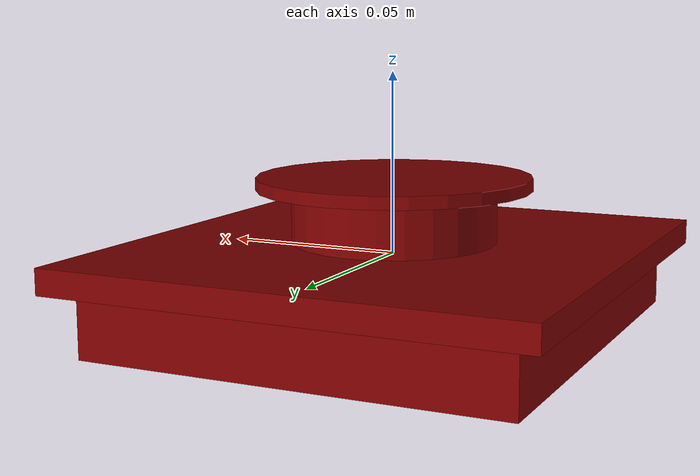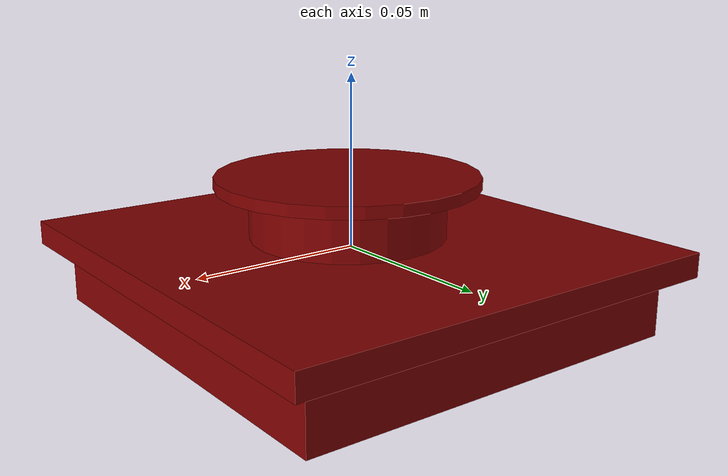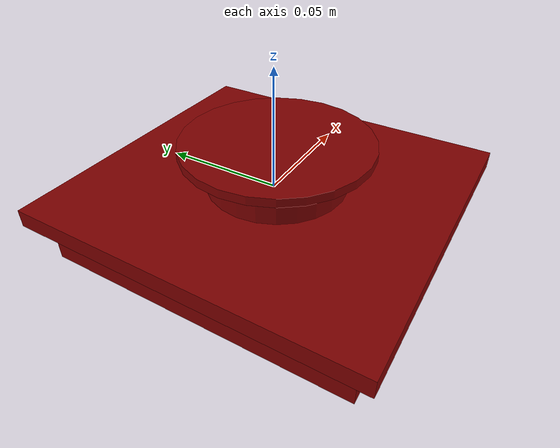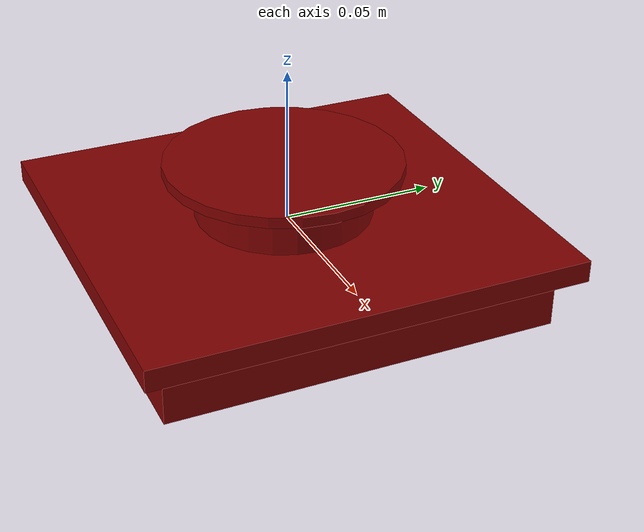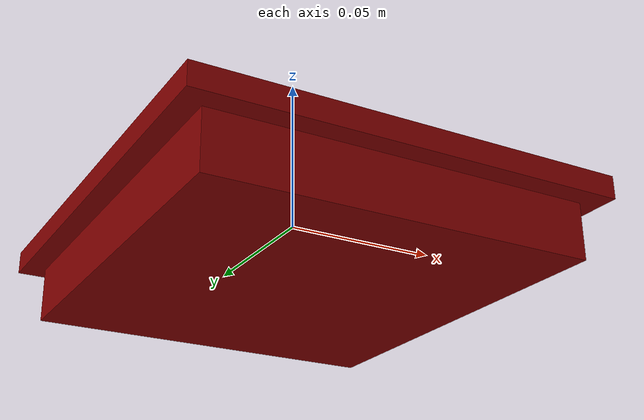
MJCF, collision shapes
<?xml version='1.0' encoding='UTF-8'?>
<mujoco model="model">
  <option timestep="0.002" gravity="0.0 0.0 -9.81"/>
  <compiler angle="radian"/>
  <asset>
    <mesh file="visuals/lid.obj" name="lid_vis"/>
    <texture file="visuals/T_lid_BC001.png" name="lid_material" type="2d"/>
    <material name="lid_material" rgba="1 1 1 1.0" texture="lid_material" shininess="0.7700482308864594" specular="0.3103448502657381"/>
  </asset>
  <default>
    <default class="visual">
      <geom conaffinity="0" contype="0" group="1" type="mesh"/>
    </default>
    <default class="collision">
      <geom group="0" rgba="0.5 0 0 0.5" density="1000" solref="0.01 1.8" solimp="0.8 0.95 0.02" condim="3"/>
    </default>
    <default class="spawns">
      <geom group="0" rgba="1 1 1 0.5" contype="0" conaffinity="0"/>
      <site group="0" rgba="1 1 1 0.5"/>
    </default>
    <default class="region">
      <geom group="1" conaffinity="0" contype="0" rgba="0 1 0 0" mass="0"/>
    </default>
  </default>
  <worldbody>
    <body>
      <body name="object">
        <geom mesh="lid_vis" type="mesh" solimp="0.998 0.998 0.001" solref="0.001 1" friction="0.95 0.3 0.1" class="visual" material="lid_material"/>
        <geom type="box" pos="1.949956640601158e-09 0.0 -0.000386284664273262" size="0.06601807475090027 0.06994271278381348 0.0035744120832532644" quat="1.0 0.0 0.0 0.0" class="collision"/>
        <geom type="box" pos="-2.240994945168495e-09 1.862645149230957e-09 -0.011895807459950447" size="0.059 0.063 0.0096" quat="1.0 0.0 0.0 0.0" class="collision"/>
        <geom type="cylinder" pos="0.00023671532107982785 -0.00144202820956707 0.008641226217150688" size="0.028447695076465607 0.00974310003221035" quat="1.0 0.0 0.0 0.0" class="collision"/>
        <geom type="cylinder" name="handle_main" pos="0.00023671532107982785 -0.00144202820956707 0.019566966220736504" size="0.03817574307322502 0.0017310422845184803" quat="1.0 0.0 0.0 0.0" class="collision"/>
        <geom class="region" name="reg_main" type="box" pos="0.0 0.0 0.0" size="0.06701807475090027 0.07094271278381348 0.02242922766506672"/>
      </body>
    </body>
  </worldbody>
  <actuator/>
</mujoco>
